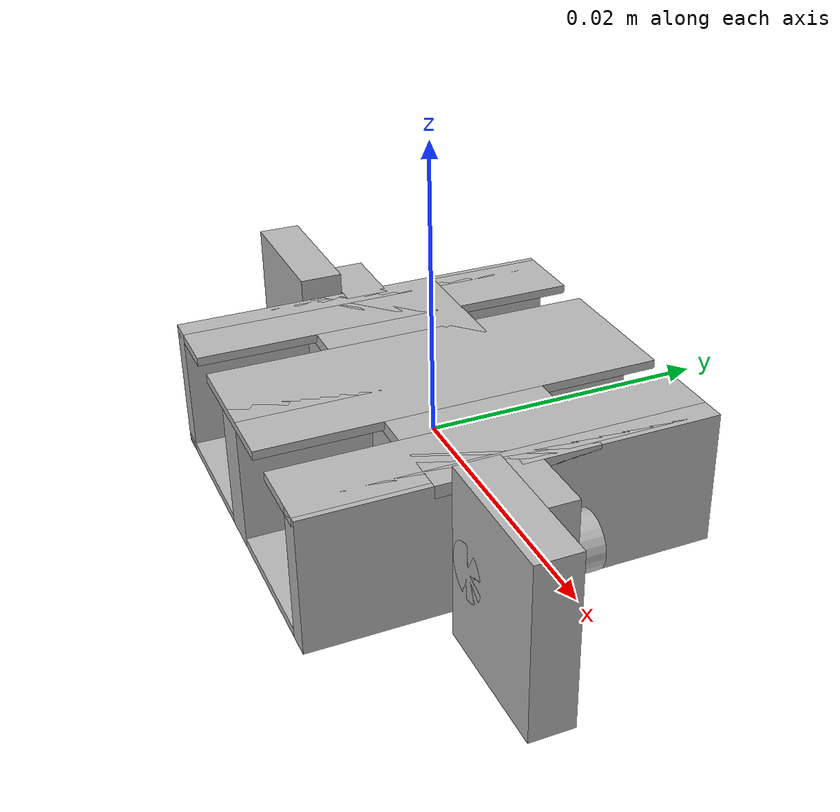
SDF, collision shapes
<?xml version="1.0" ?>
<sdf version="1.9">
  <model name="SC_Port_1_Phase_2">
    <static>true</static>
<link name="sc_port_link">
      <inertial auto="true">
        <mass>0.04</mass>
      </inertial>
      <visual name="sc_port_visual">
        <geometry>
          <mesh>
            <uri>sc_port_visual.glb</uri>
          </mesh>
        </geometry>
      </visual>
      <collision name="cube_collider_box">
        <pose>0.012047 0.0 0.0 0.0 0.0 0.0</pose>
        <geometry>
          <box>
            <size>0.001687 0.027432 0.0093</size>
          </box>
        </geometry>
        <surface>
          <friction>
            <torsional>
              <coefficient>0.5</coefficient>
            </torsional>
            <bullet>
              <friction>0.5</friction>
              <friction2>0.5</friction2>
            </bullet>
          </friction>
        </surface>
      </collision>
      <collision name="cube_collider_box.001">
        <pose>0.0 0.0 0.004225 0.0 0.0 0.0</pose>
        <geometry>
          <box>
            <size>0.025781 0.0108 0.00085</size>
          </box>
        </geometry>
        <surface>
          <friction>
            <torsional>
              <coefficient>0.5</coefficient>
            </torsional>
            <bullet>
              <friction>0.5</friction>
              <friction2>0.5</friction2>
            </bullet>
          </friction>
        </surface>
      </collision>
      <collision name="cube_collider_box_mid">
        <pose>0.0 0.0 0.00435 0.0 0.0 0.0</pose>
        <geometry>
          <box>
            <size>0.0103 0.027432 0.0006</size>
          </box>
        </geometry>
        <surface>
          <friction>
            <torsional>
              <coefficient>0.5</coefficient>
            </torsional>
            <bullet>
              <friction>0.5</friction>
              <friction2>0.5</friction2>
            </bullet>
          </friction>
        </surface>
        <surface>
          <friction>
            <torsional>
              <coefficient>0.5</coefficient>
            </torsional>
            <bullet>
              <friction>0.5</friction>
              <friction2>0.5</friction2>
            </bullet>
          </friction>
        </surface>
      </collision>
      <collision name="cube_collider_box_mid02">
        <pose>0.01 0.0 0.00435 0.0 0.0 0.0</pose>
        <geometry>
          <box>
            <size>0.005 0.027432 0.0006</size>
          </box>
        </geometry>
        <surface>
          <friction>
            <torsional>
              <coefficient>0.5</coefficient>
            </torsional>
            <bullet>
              <friction>0.5</friction>
              <friction2>0.5</friction2>
            </bullet>
          </friction>
        </surface>
        <surface>
          <friction>
            <torsional>
              <coefficient>0.5</coefficient>
            </torsional>
            <bullet>
              <friction>0.5</friction>
              <friction2>0.5</friction2>
            </bullet>
          </friction>
        </surface>
      </collision>
      <collision name="cube_collider_box_mid03">
        <pose>-0.01 0.0 0.00435 0.0 0.0 0.0</pose>
        <geometry>
          <box>
            <size>0.005 0.027432 0.0006</size>
          </box>
        </geometry>
        <surface>
          <friction>
            <torsional>
              <coefficient>0.5</coefficient>
            </torsional>
            <bullet>
              <friction>0.5</friction>
              <friction2>0.5</friction2>
            </bullet>
          </friction>
        </surface>
        <surface>
          <friction>
            <torsional>
              <coefficient>0.5</coefficient>
            </torsional>
            <bullet>
              <friction>0.5</friction>
              <friction2>0.5</friction2>
            </bullet>
          </friction>
        </surface>
      </collision>
      <collision name="cube_collider_box.002">
        <pose>0.0 -0.0 -0.00435 0.0 0.0 0.0</pose>
        <geometry>
          <box>
            <size>0.02565 0.027432 0.0006</size>
          </box>
        </geometry>
        <surface>
          <friction>
            <torsional>
              <coefficient>0.5</coefficient>
            </torsional>
            <bullet>
              <friction>0.5</friction>
              <friction2>0.5</friction2>
            </bullet>
          </friction>
        </surface>
        <surface>
          <friction>
            <torsional>
              <coefficient>0.5</coefficient>
            </torsional>
            <bullet>
              <friction>0.5</friction>
              <friction2>0.5</friction2>
            </bullet>
          </friction>
        </surface>
      </collision>
      <collision name="cube_collider_box.003">
        <pose>-0.012047 -0.0 0.0 0.0 0.0 0.0</pose>
        <geometry>
          <box>
            <size>0.001687 0.027432 0.0093</size>
          </box>
        </geometry>
        <surface>
          <friction>
            <torsional>
              <coefficient>0.5</coefficient>
            </torsional>
            <bullet>
              <friction>0.5</friction>
              <friction2>0.5</friction2>
            </bullet>
          </friction>
        </surface>
        <surface>
          <friction>
            <torsional>
              <coefficient>0.5</coefficient>
            </torsional>
            <bullet>
              <friction>0.5</friction>
              <friction2>0.5</friction2>
            </bullet>
          </friction>
        </surface>
      </collision>
      <collision name="cube_collider_box.004">
        <pose>-0.014683 -0.0 0.0 0.0 0.0 0.0</pose>
        <geometry>
          <box>
            <size>0.005484 0.003048 0.0093</size>
          </box>
        </geometry>
        <surface>
          <friction>
            <torsional>
              <coefficient>0.5</coefficient>
            </torsional>
            <bullet>
              <friction>0.5</friction>
              <friction2>0.5</friction2>
            </bullet>
          </friction>
        </surface>
      </collision>
      <collision name="cube_collider_box.005">
        <pose>0.014683 -0.0 0.0 0.0 0.0 0.0</pose>
        <geometry>
          <box>
            <size>0.005484 0.003048 0.0093</size>
          </box>
        </geometry>
        <surface>
          <friction>
            <torsional>
              <coefficient>0.5</coefficient>
            </torsional>
            <bullet>
              <friction>0.5</friction>
              <friction2>0.5</friction2>
            </bullet>
          </friction>
        </surface>
      </collision>
      <collision name="cube_collider_box.006">
        <pose>-0.0 0.0 0.0 0.0 0.0 0.0</pose>
        <geometry>
          <box>
            <size>0.002992 0.027432 0.0093</size>
          </box>
        </geometry>
        <surface>
          <friction>
            <torsional>
              <coefficient>0.5</coefficient>
            </torsional>
            <bullet>
              <friction>0.5</friction>
              <friction2>0.5</friction2>
            </bullet>
          </friction>
        </surface>
      </collision>

      <collision name="v1015120013_collider_box">
        <pose>0.0183 -0.003 -0.0 -1.570796 1.570796 0.0</pose>
        <geometry>
          <box>
            <size>0.012 0.01 0.003</size>
          </box>
        </geometry>
        <surface>
          <friction>
            <torsional>
              <coefficient>0.5</coefficient>
            </torsional>
            <bullet>
              <friction>0.5</friction>
              <friction2>0.5</friction2>
            </bullet>
          </friction>
        </surface>
      </collision>
      <collision name="v1015120012_collider_box">
        <pose>-0.0183 -0.003 0.0 -1.570796 -1.570796 -6.283185</pose>
        <geometry>
          <box>
            <size>0.012 0.01 0.003</size>
          </box>
        </geometry>
        <surface>
          <friction>
            <torsional>
              <coefficient>0.5</coefficient>
            </torsional>
            <bullet>
              <friction>0.5</friction>
              <friction2>0.5</friction2>
            </bullet>
          </friction>
        </surface>
      </collision>
      <collision name="iso 4762 - m2 x 6013_collider_cylinder">
        <pose>0.0153 -0.0005 -0.0 -4.712389 0.393346 0.0</pose>
        <geometry>
          <cylinder>
            <radius>0.0019</radius>
            <length>0.008</length>
          </cylinder>
        </geometry>
        <surface>
          <friction>
            <torsional>
              <coefficient>0.5</coefficient>
            </torsional>
            <bullet>
              <friction>0.5</friction>
              <friction2>0.5</friction2>
            </bullet>
          </friction>
        </surface>
      </collision>
      <collision name="iso 4762 - m2 x 6012_collider_cylinder">
        <pose>-0.0153 -0.0005 0.0 -4.712389 0.393346 0.0</pose>
        <geometry>
          <cylinder>
            <radius>0.0019</radius>
            <length>0.008</length>
          </cylinder>
        </geometry>
        <surface>
          <friction>
            <torsional>
              <coefficient>0.5</coefficient>
            </torsional>
            <bullet>
              <friction>0.5</friction>
              <friction2>0.5</friction2>
            </bullet>
          </friction>
        </surface>
      </collision>
      <collision name="contact_collision">
        <pose>0.0 -0.0034 -0.0 3.141593 -0.0 0.0</pose>
        <geometry>
          <box>
            <size>0.025 0.002946 0.009</size>
          </box>
        </geometry>
        <surface>
          <friction>
            <torsional>
              <coefficient>0.5</coefficient>
            </torsional>
            <bullet>
              <friction>0.5</friction>
              <friction2>0.5</friction2>
            </bullet>
          </friction>
        </surface>
      </collision>
    </link>

    <link name="sc_port_base_link">
      <pose>0 -0.002 0 1.5708 3.14159 0</pose>
    </link>

    <link name="sc_port_base_link_entrance">
      <pose relative_to="sc_port_base_link">0 0 -0.01564 0 0 0</pose>
    </link>

    <joint name="sc_port_base_entrance_joint" type="fixed">
      <parent>sc_port_base_link</parent>
      <child>sc_port_base_link_entrance</child>
    </joint>

    <joint name="sc_port_base_joint" type="fixed">
      <parent>sc_port_link</parent>
      <child>sc_port_base_link</child>
    </joint>

    <plugin
      filename="static://gz::sim::systems::TouchPlugin"
      name="gz::sim::systems::TouchPlugin">
      <target>sc_plug</target>
      <time>1</time>
      <enabled>true</enabled>
      <create_contact_sensor_for_collision>true</create_contact_sensor_for_collision>
      <collision>contact_collision</collision>
      <namespace>sc_port_1/sc_port_base</namespace>
    </plugin>

    <plugin filename="static://gz::sim::systems::PosePublisher"
      name="gz::sim::systems::PosePublisher">
      <publish_link_pose>true</publish_link_pose>
      <publish_sensor_pose>false</publish_sensor_pose>
      <publish_collision_pose>false</publish_collision_pose>
      <publish_visual_pose>false</publish_visual_pose>
      <publish_nested_model_pose>true</publish_nested_model_pose>
      <publish_model_pose>true</publish_model_pose>
      <use_pose_vector_msg>true</use_pose_vector_msg>
      <static_publisher>true</static_publisher>
      <update_frequency>0</update_frequency>
      <static_update_frequency>1</static_update_frequency>
      <topic>/sc_port_1/pose</topic>
    </plugin>

  </model>
</sdf>
